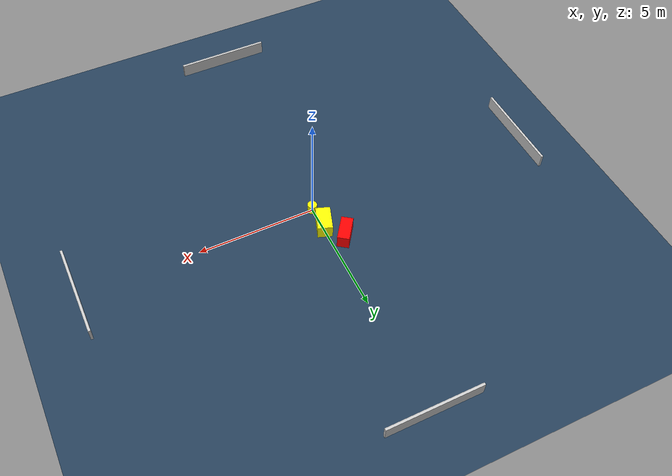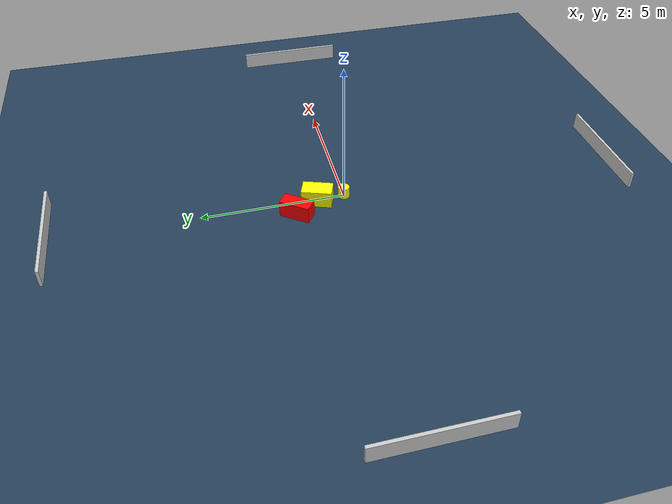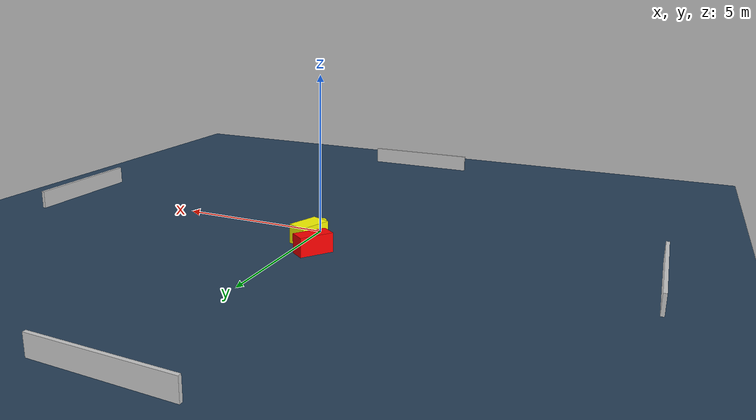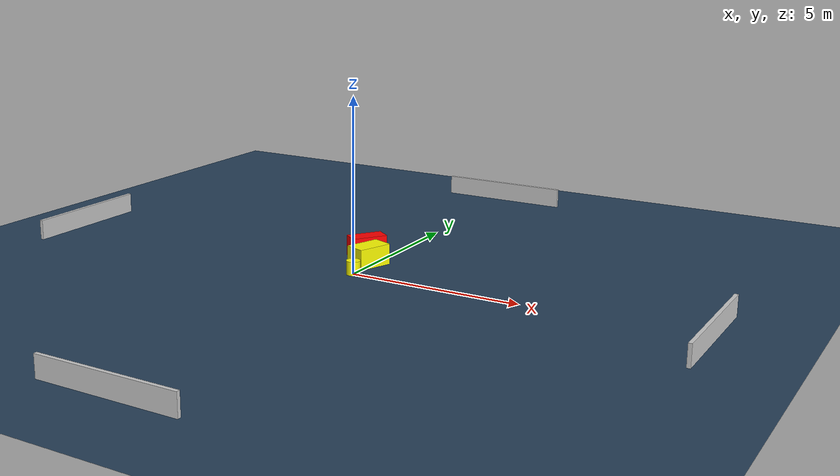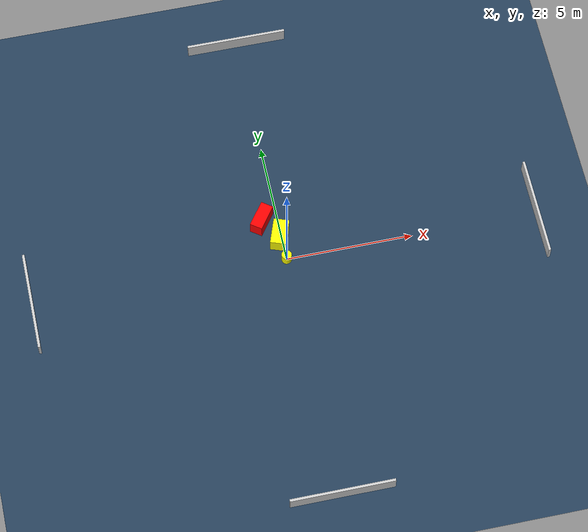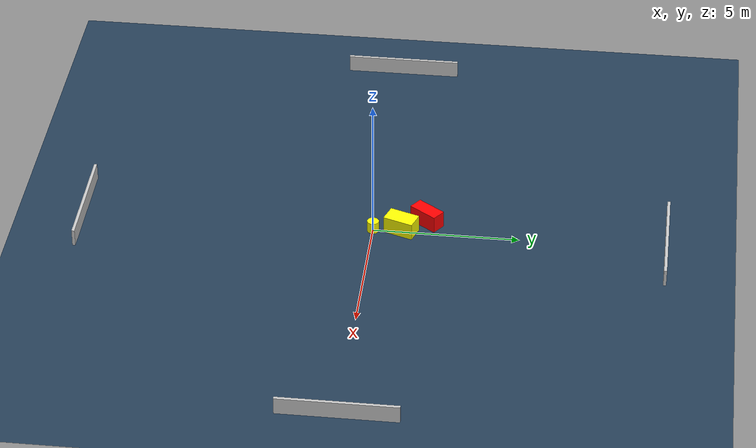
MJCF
<?xml version="1.0" ?>
<mujoco model="generated_environment">
  <option timestep="0.01" integrator="RK4" cone="elliptic"/>
  <default>
    <geom density="1"/>
  </default>
  <asset>
    <texture builtin="gradient" height="3072" name="skybox" rgb1="0.3 0.5 0.7" rgb2="0 0 0" type="skybox" width="512"/>
    <texture builtin="checker" height="300" name="groundplane" rgb1="0.2 0.3 0.4" rgb2="0.1 0.2 0.3" type="2d" width="300"/>
    <material name="groundplane" reflectance="0.2" texrepeat="5 5" texture="groundplane"/>
  </asset>
  <worldbody>
    <light dir="0 0 -1" directional="true" pos="0 0 1.5"/>
    <geom condim="3" friction="0.5 0.005 0.001" material="groundplane" name="floor" pos="0 0 0" size="0 0 0.05" type="plane"/>
    <body name="walls">
      <geom name="wall_1" condim="4" pos="-10.0 0.0 0.3" rgba="0.800000011920929 0.800000011920929 0.800000011920929 1.0" size="0.05 2.0 0.3" type="box"/>
      <geom name="wall_2" condim="4" pos="10.0 0.0 0.3" rgba="0.800000011920929 0.800000011920929 0.800000011920929 1.0" size="0.05 2.0 0.3" type="box"/>
      <geom name="wall_3" condim="4" pos="0.0 -10.0 0.3" rgba="0.800000011920929 0.800000011920929 0.800000011920929 1.0" size="2.0 0.05 0.3" type="box"/>
      <geom name="wall_4" condim="4" pos="0.0 10.0 0.3" rgba="0.800000011920929 0.800000011920929 0.800000011920929 1.0" size="2.0 0.05 0.3" type="box"/>
    </body>
    <body name="robot">
      <joint name="joint_x" type="slide" pos="0 0 0" axis="1 0 0"/>
      <joint name="joint_y" type="slide" pos="0 0 0" axis="0 1 0"/>
      <geom name="robot" type="cylinder" pos="0.0 0.0 0.2" size="0.2 0.2 0.0" mass="5.0" friction="1.0 0.005 0.0001" condim="4" rgba="1.0 1.0 0.0 1.0"/>
    </body>
    <body name="obstacle_1_movable">
      <geom name="obstacle_1_movable" condim="4" pos="-0.0741572216894118 0.9609972548442373 0.3" euler="0 0 160.41179531873382" friction="0.0 0.005 0.001" rgba="1.0 1.0 0.0 1.0" size="0.30652789012579235 0.5282676104508799 0.3" type="box" mass="0.1"/>
      <joint type="free"/>
    </body>
    <body name="obstacle_2_static">
      <geom name="obstacle_2_static" condim="4" pos="-0.6264079694725365 1.789349741690681 0.3" euler="0 0 54.23115505141227" friction="0.0 0.005 0.001" rgba="1.0 0.0 0.0 1.0" size="0.5359498676666041 0.2490871108280075 0.3" type="box"/>
    </body>
  </worldbody>
  <actuator>
    <motor name="actuator_x" joint="joint_x" gear="1" ctrlrange="-1 1"/>
    <motor name="actuator_y" joint="joint_y" gear="1" ctrlrange="-1 1"/>
  </actuator>
</mujoco>
